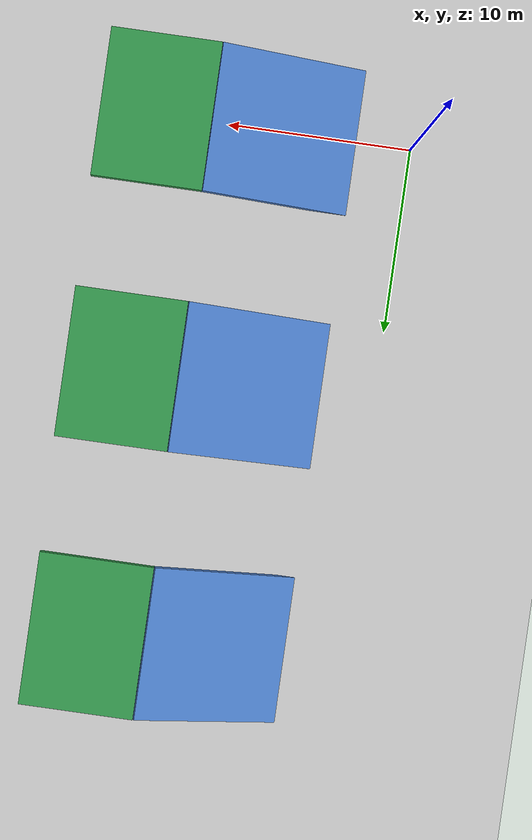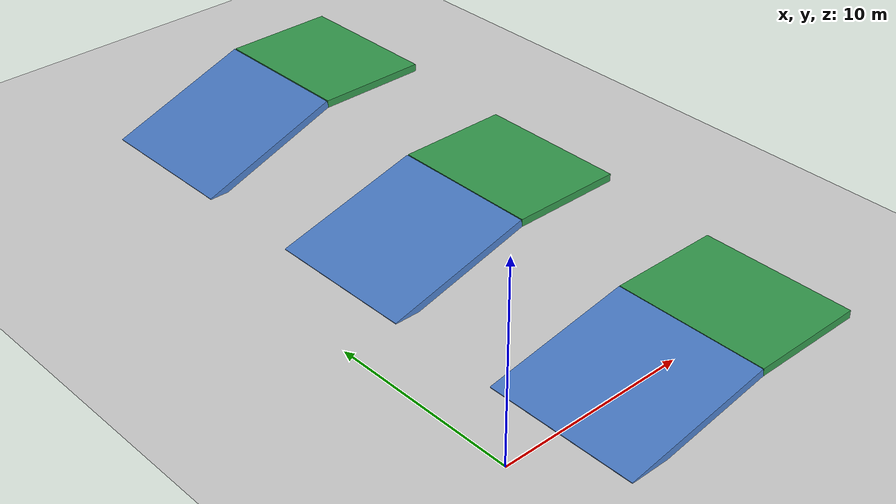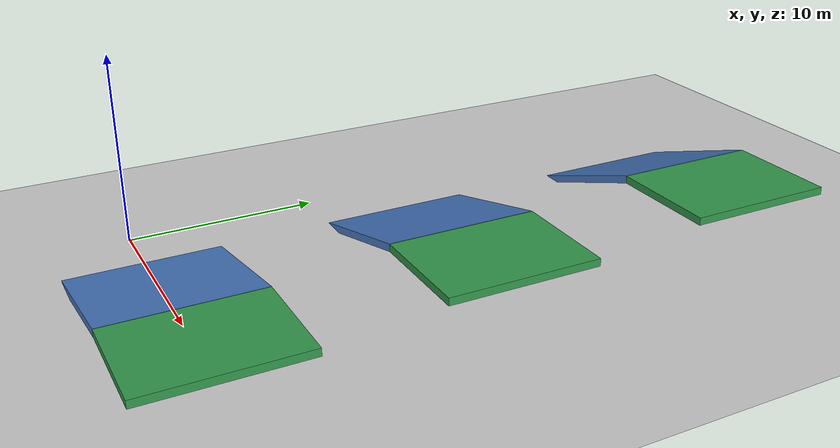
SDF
<?xml version="1.0" ?>
<sdf version="1.6">
  <world name="empty">
    <physics name="1ms" type="ignored">
      <max_step_size>0.001</max_step_size>
      <real_time_factor>1.0</real_time_factor>
    </physics>
    <plugin
        filename="gz-sim-sensors-system"
        name="gz::sim::systems::Sensors">
      <render_engine>ogre</render_engine>
    </plugin>
    <plugin
        filename="gz-sim-physics-system"
        name="gz::sim::systems::Physics">
    </plugin>
    <plugin
        filename="gz-sim-user-commands-system"
        name="gz::sim::systems::UserCommands">
    </plugin>
    <plugin
        filename="gz-sim-scene-broadcaster-system"
        name="gz::sim::systems::SceneBroadcaster">
    </plugin>

    <light type="directional" name="sun">
      <cast_shadows>true</cast_shadows>
      <pose>0 0 10 0 0 0</pose>
      <diffuse>0.8 0.8 0.8 1</diffuse>
      <specular>0.2 0.2 0.2 1</specular>
      <attenuation>
        <range>1000</range>
        <constant>0.9</constant>
        <linear>0.01</linear>
        <quadratic>0.001</quadratic>
      </attenuation>
      <direction>-0.5 0.1 -0.9</direction>
    </light>

    <model name="ground_plane">
      <static>true</static>
      <link name="link">
        <collision name="collision">
          <geometry>
            <plane>
              <normal>0 0 1</normal>
              <size>100 100</size>
            </plane>
          </geometry>
        </collision>
        <visual name="visual">
          <geometry>
            <plane>
              <normal>0 0 1</normal>
              <size>100 100</size>
            </plane>
          </geometry>
          <material>
            <ambient>0.8 0.8 0.8 1</ambient>
            <diffuse>0.8 0.8 0.8 1</diffuse>
            <specular>0.8 0.8 0.8 1</specular>
          </material>
        </visual>
      </link>
    </model>

      <model name='ramp_10'>
      <static>true</static>
      <pose>6.9392 0.0 0.4976 0 -0.174533 0</pose>
      <link name='l'>
        <collision name='c'><geometry><box><size>8.0 8.0 0.4</size></box></geometry>
          <surface><friction><ode><mu>1.0</mu><mu2>1.0</mu2></ode></friction></surface></collision>
        <visual name='v'><geometry><box><size>8.0 8.0 0.4</size></box></geometry>
          <material><ambient>0.3 0.5 0.8 1</ambient><diffuse>0.3 0.5 0.8 1</diffuse></material></visual>
      </link>
    </model>
    <model name='top_10'>
      <static>true</static>
      <pose>13.8785 0.0 1.1892 0 0 0</pose>
      <link name='l'>
        <collision name='c'><geometry><box><size>6 8.0 0.4</size></box></geometry>
          <surface><friction><ode><mu>1.0</mu><mu2>1.0</mu2></ode></friction></surface></collision>
        <visual name='v'><geometry><box><size>6 8.0 0.4</size></box></geometry>
          <material><ambient>0.2 0.6 0.3 1</ambient><diffuse>0.2 0.6 0.3 1</diffuse></material></visual>
      </link>
    </model>
    <model name='ramp_15'>
      <static>true</static>
      <pose>6.8637 14.0 0.8421 0 -0.261799 0</pose>
      <link name='l'>
        <collision name='c'><geometry><box><size>8.0 8.0 0.4</size></box></geometry>
          <surface><friction><ode><mu>1.0</mu><mu2>1.0</mu2></ode></friction></surface></collision>
        <visual name='v'><geometry><box><size>8.0 8.0 0.4</size></box></geometry>
          <material><ambient>0.3 0.5 0.8 1</ambient><diffuse>0.3 0.5 0.8 1</diffuse></material></visual>
      </link>
    </model>
    <model name='top_15'>
      <static>true</static>
      <pose>13.7274 14.0 1.8706 0 0 0</pose>
      <link name='l'>
        <collision name='c'><geometry><box><size>6 8.0 0.4</size></box></geometry>
          <surface><friction><ode><mu>1.0</mu><mu2>1.0</mu2></ode></friction></surface></collision>
        <visual name='v'><geometry><box><size>6 8.0 0.4</size></box></geometry>
          <material><ambient>0.2 0.6 0.3 1</ambient><diffuse>0.2 0.6 0.3 1</diffuse></material></visual>
      </link>
    </model>
    <model name='ramp_20'>
      <static>true</static>
      <pose>6.7588 28.0 1.1801 0 -0.349066 0</pose>
      <link name='l'>
        <collision name='c'><geometry><box><size>8.0 8.0 0.4</size></box></geometry>
          <surface><friction><ode><mu>1.0</mu><mu2>1.0</mu2></ode></friction></surface></collision>
        <visual name='v'><geometry><box><size>8.0 8.0 0.4</size></box></geometry>
          <material><ambient>0.3 0.5 0.8 1</ambient><diffuse>0.3 0.5 0.8 1</diffuse></material></visual>
      </link>
    </model>
    <model name='top_20'>
      <static>true</static>
      <pose>13.5175 28.0 2.5362 0 0 0</pose>
      <link name='l'>
        <collision name='c'><geometry><box><size>6 8.0 0.4</size></box></geometry>
          <surface><friction><ode><mu>1.0</mu><mu2>1.0</mu2></ode></friction></surface></collision>
        <visual name='v'><geometry><box><size>6 8.0 0.4</size></box></geometry>
          <material><ambient>0.2 0.6 0.3 1</ambient><diffuse>0.2 0.6 0.3 1</diffuse></material></visual>
      </link>
    </model>
  </world>
</sdf>
